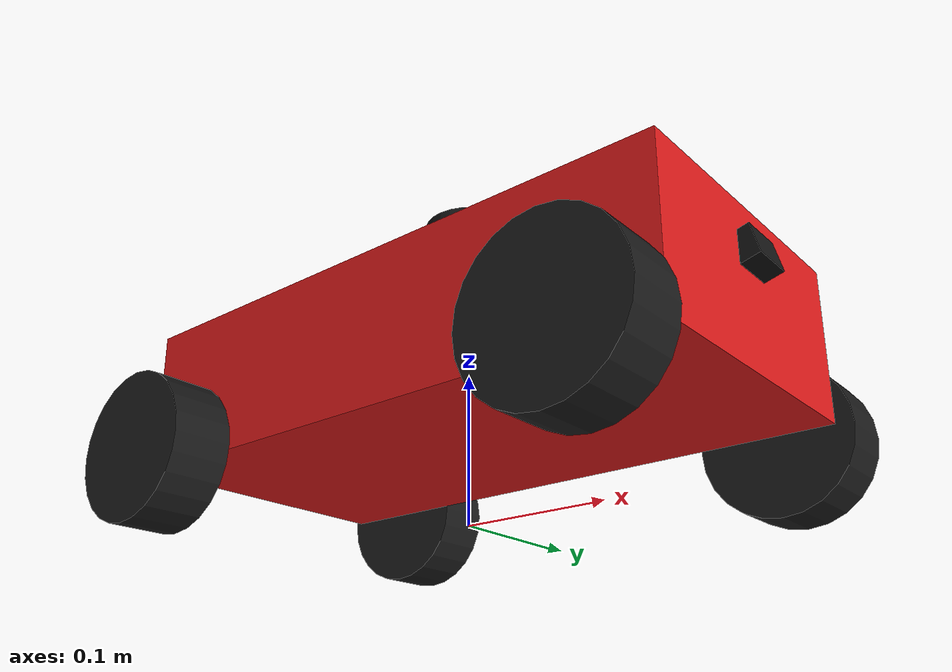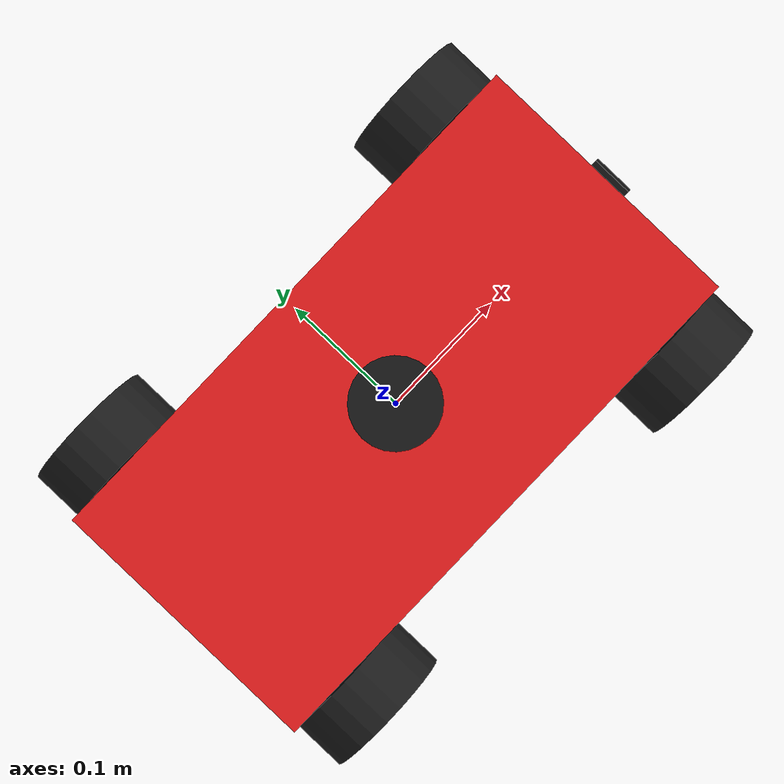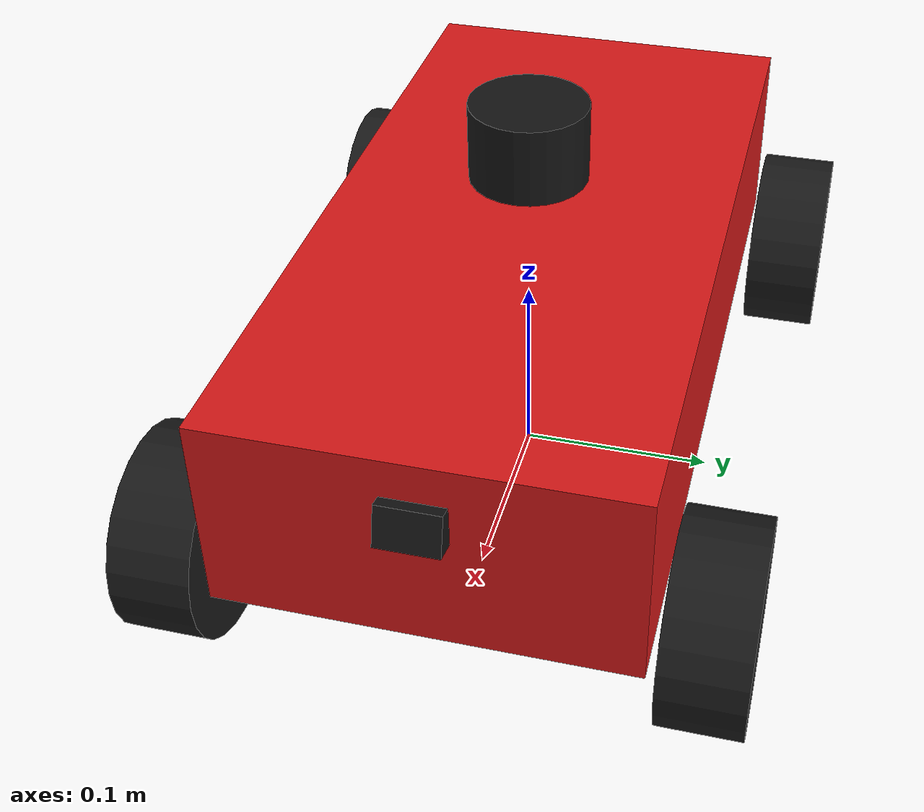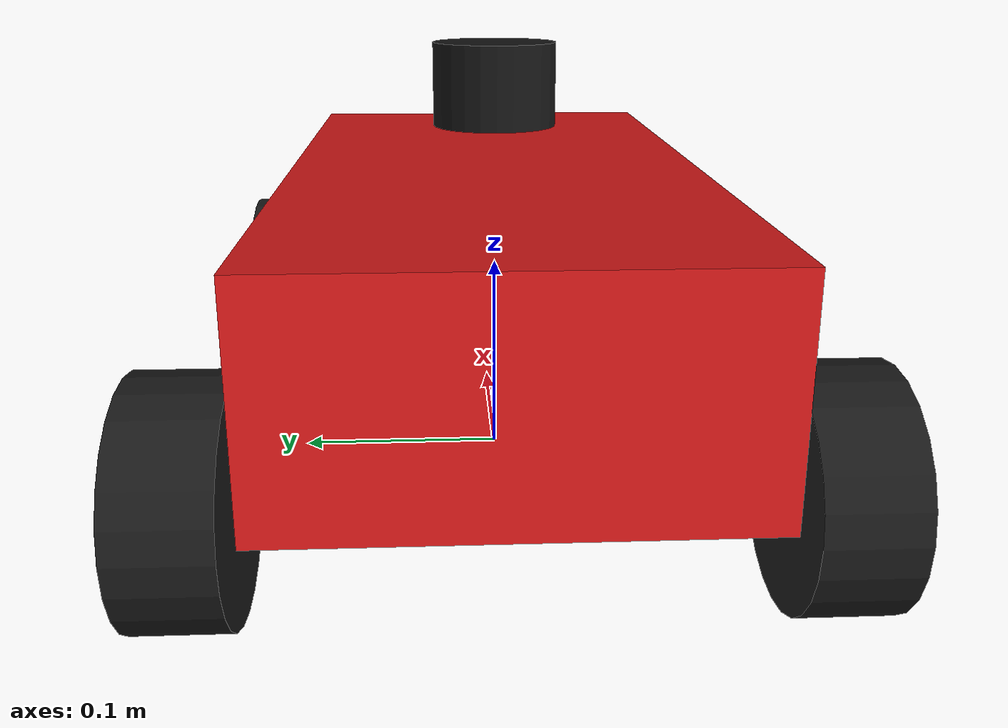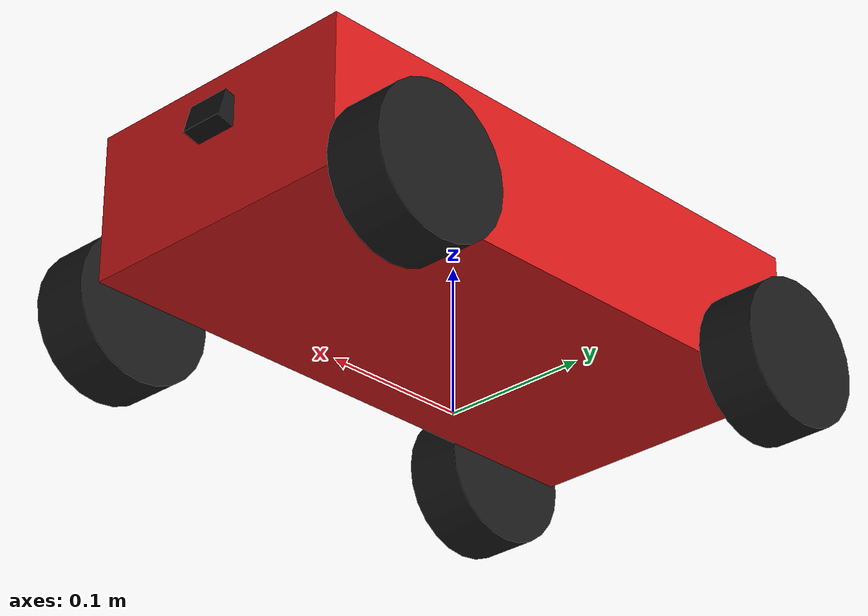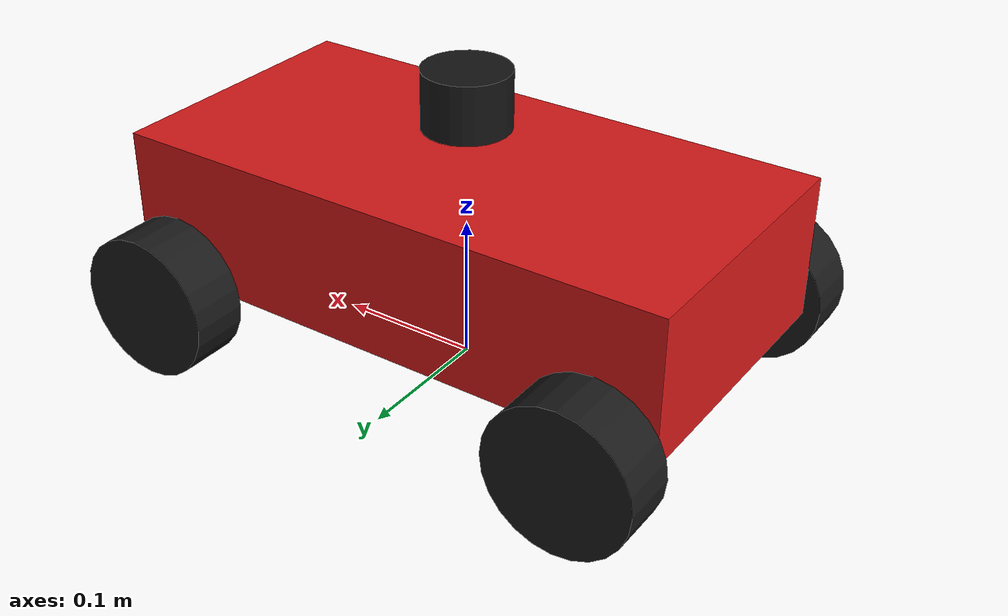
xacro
<?xml version="1.0"?>
<robot name="slam_car"
       xmlns:xacro="http://ros.org/wiki/xacro"
>

  <xacro:property name="wheelbase"        value="0.32"/>
  <xacro:property name="track_width"      value="0.25"/>
  <xacro:property name="wheel_radius"     value="0.05"/>
  <xacro:property name="wheel_width"      value="0.04"/>
  <xacro:property name="chassis_length"   value="0.40"/>
  <xacro:property name="chassis_width"    value="0.20"/>
  <xacro:property name="chassis_height"   value="0.10"/>
  <xacro:property name="chassis_mass"     value="1.5"/>
  <xacro:property name="wheel_mass"       value="0.05"/>
  <xacro:property name="steering_limit"   value="0.6"/>
  <xacro:property name="wheel_friction_mu" value="1.0"/>

  <!-- Govde (base_link): kutu eylemsizligi + yer seviyesinden origin
       yuksekligi. imu_joint de bu z-yuksekligini kullanacak (govdenin
       geometrik merkeziyle ayni nokta oldugu icin). -->
  <xacro:property name="chassis_ixx"      value="${chassis_mass*(chassis_width*chassis_width+chassis_height*chassis_height)/12}"/>
  <xacro:property name="chassis_iyy"      value="${chassis_mass*(chassis_length*chassis_length+chassis_height*chassis_height)/12}"/>
  <xacro:property name="chassis_izz"      value="${chassis_mass*(chassis_length*chassis_length+chassis_width*chassis_width)/12}"/>
  <xacro:property name="chassis_origin_z" value="${wheel_radius + chassis_height/2}"/>

  <!-- Tekerlekler: 4'u de ayni fiziksel boyutta, o yuzden eylemsizlik
       TEK formul (macro icinde kullaniliyor). Montaj konumlari ise
       4 farkli isaret kombinasyonu; her biri kendi ismiyle. -->
  <xacro:property name="wheel_ixx_izz"    value="${wheel_mass*(3*wheel_radius*wheel_radius+wheel_width*wheel_width)/12}"/>
  <xacro:property name="wheel_iyy_spin"   value="${wheel_mass*wheel_radius*wheel_radius/2}"/>
  <xacro:property name="front_wheel_x"    value="${wheelbase/2}"/>
  <xacro:property name="rear_wheel_x"     value="${-wheelbase/2}"/>
  <xacro:property name="left_wheel_y"     value="${track_width/2}"/>
  <xacro:property name="right_wheel_y"    value="${-track_width/2}"/>
  <xacro:property name="wheel_mount_z"    value="${wheel_radius}"/>

  <xacro:property name="lidar_radius"     value="0.03"/>
  <xacro:property name="lidar_height"     value="0.04"/>
  <xacro:property name="lidar_mass"       value="0.05"/>

  <!-- Tureyen degerler: eylemsizlik (dik silindir, eksen Z) +
       govdenin uzerine, cikinti olmadan oturacagi z-yuksekligi. -->
  <xacro:property name="lidar_ixx_iyy"    value="${lidar_mass*(3*lidar_radius*lidar_radius+lidar_height*lidar_height)/12}"/>
  <xacro:property name="lidar_izz"        value="${lidar_mass*lidar_radius*lidar_radius/2}"/>
  <xacro:property name="lidar_origin_z"   value="${wheel_radius + chassis_height + lidar_height}"/>

  <xacro:property name="lidar_fov"              value="6.28318530718"/> <!-- 2*pi, tam 360 derece -->
  <xacro:property name="lidar_samples"          value="360"/>
  <xacro:property name="lidar_min_range"        value="0.12"/>
  <xacro:property name="lidar_max_range"        value="3.5"/>
  <xacro:property name="lidar_range_resolution" value="0.015"/>
  <xacro:property name="lidar_rate"             value="10"/>
  <xacro:property name="lidar_noise_mean"       value="0.0"/>
  <xacro:property name="lidar_noise_stddev"     value="0.01"/>

  <!-- ============================================================
       IMU PARAMETRELERI
       ============================================================
       FIZIKSEL: -->
  <xacro:property name="imu_size_x"       value="0.02"/>
  <xacro:property name="imu_size_y"       value="0.02"/>
  <xacro:property name="imu_size_z"       value="0.01"/>
  <xacro:property name="imu_mass"         value="0.01"/>

  <xacro:property name="imu_ixx"          value="${imu_mass*(imu_size_y*imu_size_y+imu_size_z*imu_size_z)/12}"/>
  <xacro:property name="imu_iyy"          value="${imu_mass*(imu_size_x*imu_size_x+imu_size_z*imu_size_z)/12}"/>
  <xacro:property name="imu_izz"          value="${imu_mass*(imu_size_x*imu_size_x+imu_size_y*imu_size_y)/12}"/>

  <xacro:property name="imu_rate"                        value="100"/>
  <xacro:property name="imu_noise_mean"                  value="0.0"/>
  <xacro:property name="imu_angular_velocity_stddev"     value="0.0003"/>
  <xacro:property name="imu_linear_acceleration_stddev"  value="0.02"/>

  <!-- ============================================================
       KAMERA PARAMETRELERI
       ============================================================
       FIZIKSEL: -->
  <xacro:property name="camera_size_x"    value="0.02"/>
  <xacro:property name="camera_size_y"    value="0.03"/>
  <xacro:property name="camera_size_z"    value="0.02"/>
  <xacro:property name="camera_mass"      value="0.01"/>

  <!-- Tureyen degerler: eylemsizlik (kutu) + govdenin on yuzunde,
       ust govde hizasindaki montaj konumu. -->
  <xacro:property name="camera_ixx"       value="${camera_mass*(camera_size_y*camera_size_y+camera_size_z*camera_size_z)/12}"/>
  <xacro:property name="camera_iyy"       value="${camera_mass*(camera_size_x*camera_size_x+camera_size_z*camera_size_z)/12}"/>
  <xacro:property name="camera_izz"       value="${camera_mass*(camera_size_x*camera_size_x+camera_size_y*camera_size_y)/12}"/>
  <xacro:property name="camera_origin_x"  value="${chassis_length/2}"/>
  <xacro:property name="camera_origin_z"  value="${wheel_radius + chassis_height*0.7}"/>

  <xacro:property name="camera_pitch"     value="0.2618"/> <!-- 15 derece -->
  <xacro:property name="camera_joint_pitch" value="${-camera_pitch}"/>

  <xacro:property name="camera_horizontal_fov"  value="1.15"/>
  <xacro:property name="camera_image_width"     value="640"/>
  <xacro:property name="camera_image_height"    value="480"/>
  <xacro:property name="camera_clip_near"       value="0.05"/>
  <xacro:property name="camera_clip_far"        value="15.0"/>
  <xacro:property name="camera_rate"            value="30"/>
  <xacro:property name="camera_noise_mean"      value="0.0"/>
  <xacro:property name="camera_noise_stddev"    value="0.007"/>

  <material name="chassis_color"><color rgba="0.85 0.1 0.1 1"/></material>
  <material name="wheel_color"><color rgba="0.1 0.1 0.1 1"/></material>
  <material name="sensor_dark"><color rgba="0.08 0.08 0.08 1"/></material>
  <material name="sensor_blue"><color rgba="0.1 0.3 0.85 1"/></material>

  <link name="base_footprint"/>
  <joint name="base_footprint_joint" type="fixed">
    <parent link="base_footprint"/>
    <child link="base_link"/>
    <origin xyz="0 0 0" rpy="0 0 0"/>
  </joint>

  <link name="base_link">
    <visual>
      <origin xyz="0 0 ${chassis_origin_z}" rpy="0 0 0"/>
      <geometry><box size="${chassis_length} ${chassis_width} ${chassis_height}"/></geometry>
      <material name="chassis_color"/>
    </visual>
    <collision>
      <origin xyz="0 0 ${chassis_origin_z}" rpy="0 0 0"/>
      <geometry><box size="${chassis_length} ${chassis_width} ${chassis_height}"/></geometry>
    </collision>
    <inertial>
      <origin xyz="0 0 ${chassis_origin_z}" rpy="0 0 0"/>
      <mass value="${chassis_mass}"/>
      <inertia
        ixx="${chassis_ixx}" ixy="0" ixz="0"
        iyy="${chassis_iyy}" iyz="0"
        izz="${chassis_izz}"/>
    </inertial>
  </link>

  <xacro:macro name="wheel_link" params="name">
    <link name="${name}">
      <visual>
        <origin xyz="0 0 0" rpy="1.5708 0 0"/>
        <geometry><cylinder radius="${wheel_radius}" length="${wheel_width}"/></geometry>
        <material name="wheel_color"/>
      </visual>
      <collision>
        <origin xyz="0 0 0" rpy="1.5708 0 0"/>
        <geometry><cylinder radius="${wheel_radius}" length="${wheel_width}"/></geometry>
      </collision>
      <inertial>
        <mass value="${wheel_mass}"/>
        <inertia
          ixx="${wheel_ixx_izz}" ixy="0" ixz="0"
          iyy="${wheel_iyy_spin}" iyz="0"
          izz="${wheel_ixx_izz}"/>
      </inertial>
    </link>
  </xacro:macro>

  <link name="front_left_steer_link">
    <inertial><mass value="0.01"/><inertia ixx="1e-6" ixy="0" ixz="0" iyy="1e-6" iyz="0" izz="1e-6"/></inertial>
  </link>
  <joint name="front_left_wheel_steering_joint" type="revolute">
    <parent link="base_link"/>
    <child link="front_left_steer_link"/>
    <origin xyz="${front_wheel_x} ${left_wheel_y} ${wheel_mount_z}" rpy="0 0 0"/>
    <axis xyz="0 0 1"/>
    <limit lower="-${steering_limit}" upper="${steering_limit}" effort="10" velocity="5"/>
  </joint>
  <xacro:wheel_link name="front_left_wheel_link"/>
  <joint name="front_left_wheel_joint" type="continuous">
    <parent link="front_left_steer_link"/>
    <child link="front_left_wheel_link"/>
    <origin xyz="0 0 0" rpy="0 0 0"/>
    <axis xyz="0 1 0"/>
  </joint>

  <link name="front_right_steer_link">
    <inertial><mass value="0.01"/><inertia ixx="1e-6" ixy="0" ixz="0" iyy="1e-6" iyz="0" izz="1e-6"/></inertial>
  </link>
  <joint name="front_right_wheel_steering_joint" type="revolute">
    <parent link="base_link"/>
    <child link="front_right_steer_link"/>
    <origin xyz="${front_wheel_x} ${right_wheel_y} ${wheel_mount_z}" rpy="0 0 0"/>
    <axis xyz="0 0 1"/>
    <limit lower="-${steering_limit}" upper="${steering_limit}" effort="10" velocity="5"/>
  </joint>
  <xacro:wheel_link name="front_right_wheel_link"/>
  <joint name="front_right_wheel_joint" type="continuous">
    <parent link="front_right_steer_link"/>
    <child link="front_right_wheel_link"/>
    <origin xyz="0 0 0" rpy="0 0 0"/>
    <axis xyz="0 1 0"/>
  </joint>

  <xacro:wheel_link name="rear_left_wheel_link"/>
  <joint name="rear_left_wheel_joint" type="continuous">
    <parent link="base_link"/>
    <child link="rear_left_wheel_link"/>
    <origin xyz="${rear_wheel_x} ${left_wheel_y} ${wheel_mount_z}" rpy="0 0 0"/>
    <axis xyz="0 1 0"/>
  </joint>

  <xacro:wheel_link name="rear_right_wheel_link"/>
  <joint name="rear_right_wheel_joint" type="continuous">
    <parent link="base_link"/>
    <child link="rear_right_wheel_link"/>
    <origin xyz="${rear_wheel_x} ${right_wheel_y} ${wheel_mount_z}" rpy="0 0 0"/>
    <axis xyz="0 1 0"/>
  </joint>

  <gazebo reference="front_left_wheel_link">
    <mu1>${wheel_friction_mu}</mu1>
    <mu2>${wheel_friction_mu}</mu2>
  </gazebo>
  <gazebo reference="front_right_wheel_link">
    <mu1>${wheel_friction_mu}</mu1>
    <mu2>${wheel_friction_mu}</mu2>
  </gazebo>
  <gazebo reference="rear_left_wheel_link">
    <mu1>${wheel_friction_mu}</mu1>
    <mu2>${wheel_friction_mu}</mu2>
  </gazebo>
  <gazebo reference="rear_right_wheel_link">
    <mu1>${wheel_friction_mu}</mu1>
    <mu2>${wheel_friction_mu}</mu2>
  </gazebo>

  <gazebo>
    <plugin filename="ignition-gazebo-ackermann-steering-system"
            name="gz::sim::systems::AckermannSteering">
      <left_joint>front_left_wheel_joint</left_joint>
      <left_joint>rear_left_wheel_joint</left_joint>
      <right_joint>front_right_wheel_joint</right_joint>
      <right_joint>rear_right_wheel_joint</right_joint>
      <left_steering_joint>front_left_wheel_steering_joint</left_steering_joint>
      <right_steering_joint>front_right_wheel_steering_joint</right_steering_joint>
      <kingpin_width>${track_width - 0.02}</kingpin_width>
      <steering_limit>${steering_limit}</steering_limit>
      <wheel_base>${wheelbase}</wheel_base>
      <wheel_separation>${track_width}</wheel_separation>
      <wheel_radius>${wheel_radius}</wheel_radius>
      <min_velocity>-1.0</min_velocity>
      <max_velocity>2.0</max_velocity>
      <min_acceleration>-3.0</min_acceleration>
      <max_acceleration>3.0</max_acceleration>
      <topic>cmd_vel</topic>
      <odom_topic>odom</odom_topic>
      <tf_topic>tf</tf_topic>
      <frame_id>odom</frame_id>
      <child_frame_id>base_footprint</child_frame_id>
      <odom_publish_frequency>30</odom_publish_frequency>
    </plugin>

    <plugin filename="ignition-gazebo-joint-state-publisher-system"
            name="ignition::gazebo::systems::JointStatePublisher"/>
  </gazebo>

  <link name="lidar_link">
    <visual>
      <geometry><cylinder radius="${lidar_radius}" length="${lidar_height}"/></geometry>
      <material name="sensor_dark"/>
    </visual>
    <collision>
      <geometry><cylinder radius="${lidar_radius}" length="${lidar_height}"/></geometry>
    </collision>
    <inertial>
      <mass value="${lidar_mass}"/>
      <inertia
        ixx="${lidar_ixx_iyy}" ixy="0" ixz="0"
        iyy="${lidar_ixx_iyy}" iyz="0"
        izz="${lidar_izz}"/>
    </inertial>
  </link>
  <joint name="lidar_joint" type="fixed">
    <parent link="base_link"/>
    <child link="lidar_link"/>
    <origin xyz="0 0 ${lidar_origin_z}" rpy="0 0 0"/>
  </joint>

  <gazebo reference="lidar_link">
    <sensor name="lidar_sensor" type="gpu_lidar">
      <topic>scan</topic>
      <ignition_frame_id>lidar_link</ignition_frame_id>
      <update_rate>${lidar_rate}</update_rate>
      <always_on>1</always_on>
      <visualize>true</visualize>
      <lidar>
        <scan>
          <horizontal>
            <samples>${lidar_samples}</samples>
            <resolution>1</resolution>
            <min_angle>-${lidar_fov/2}</min_angle>
            <max_angle>${lidar_fov/2}</max_angle>
          </horizontal>
        </scan>
        <range>
          <min>${lidar_min_range}</min>
          <max>${lidar_max_range}</max>
          <resolution>${lidar_range_resolution}</resolution>
        </range>
        <noise>
          <type>gaussian</type>
          <mean>${lidar_noise_mean}</mean>
          <stddev>${lidar_noise_stddev}</stddev>
        </noise>
      </lidar>
    </sensor>
  </gazebo>

  <link name="imu_link">
    <visual>
      <geometry><box size="${imu_size_x} ${imu_size_y} ${imu_size_z}"/></geometry>
      <material name="sensor_blue"/>
    </visual>
    <collision>
      <geometry><box size="${imu_size_x} ${imu_size_y} ${imu_size_z}"/></geometry>
    </collision>
    <inertial>
      <mass value="${imu_mass}"/>
      <inertia
        ixx="${imu_ixx}" ixy="0" ixz="0"
        iyy="${imu_iyy}" iyz="0"
        izz="${imu_izz}"/>
    </inertial>
  </link>
  <joint name="imu_joint" type="fixed">
    <parent link="base_link"/>
    <child link="imu_link"/>
    <origin xyz="0 0 ${chassis_origin_z}" rpy="0 0 0"/>
  </joint>

  <gazebo reference="imu_link">
    <sensor name="imu_sensor" type="imu">
      <topic>imu</topic>
      <ignition_frame_id>imu_link</ignition_frame_id>
      <update_rate>${imu_rate}</update_rate>
      <always_on>1</always_on>
      <imu>
        <angular_velocity>
          <x><noise type="gaussian"><mean>${imu_noise_mean}</mean><stddev>${imu_angular_velocity_stddev}</stddev></noise></x>
          <y><noise type="gaussian"><mean>${imu_noise_mean}</mean><stddev>${imu_angular_velocity_stddev}</stddev></noise></y>
          <z><noise type="gaussian"><mean>${imu_noise_mean}</mean><stddev>${imu_angular_velocity_stddev}</stddev></noise></z>
        </angular_velocity>
        <linear_acceleration>
          <x><noise type="gaussian"><mean>${imu_noise_mean}</mean><stddev>${imu_linear_acceleration_stddev}</stddev></noise></x>
          <y><noise type="gaussian"><mean>${imu_noise_mean}</mean><stddev>${imu_linear_acceleration_stddev}</stddev></noise></y>
          <z><noise type="gaussian"><mean>${imu_noise_mean}</mean><stddev>${imu_linear_acceleration_stddev}</stddev></noise></z>
        </linear_acceleration>
      </imu>
    </sensor>
  </gazebo>

  <link name="camera_link">
    <visual>
      <geometry><box size="${camera_size_x} ${camera_size_y} ${camera_size_z}"/></geometry>
      <material name="sensor_dark"/>
    </visual>
    <collision>
      <geometry><box size="${camera_size_x} ${camera_size_y} ${camera_size_z}"/></geometry>
    </collision>
    <inertial>
      <mass value="${camera_mass}"/>
      <inertia
        ixx="${camera_ixx}" ixy="0" ixz="0"
        iyy="${camera_iyy}" iyz="0"
        izz="${camera_izz}"/>
    </inertial>
  </link>
  <joint name="camera_joint" type="fixed">
    <parent link="base_link"/>
    <child link="camera_link"/>
    <origin xyz="${camera_origin_x} 0 ${camera_origin_z}" rpy="0 ${camera_joint_pitch} 0"/>
  </joint>

  <link name="camera_link_optical"/>
  <joint name="camera_optical_joint" type="fixed">
    <parent link="camera_link"/>
    <child link="camera_link_optical"/>
    <origin xyz="0 0 0" rpy="-1.5708 0 -1.5708"/>
  </joint>

  <gazebo reference="camera_link">
    <sensor name="camera_sensor" type="camera">
      <topic>camera/image</topic>
      <ignition_frame_id>camera_link_optical</ignition_frame_id>
      <update_rate>${camera_rate}</update_rate>
      <always_on>1</always_on>
      <visualize>true</visualize>
      <camera>
        <horizontal_fov>${camera_horizontal_fov}</horizontal_fov>
        <camera_info_topic>camera/camera_info</camera_info_topic>
        <image>
          <width>${camera_image_width}</width>
          <height>${camera_image_height}</height>
          <format>R8G8B8</format>
        </image>
        <clip>
          <near>${camera_clip_near}</near>
          <far>${camera_clip_far}</far>
        </clip>
        <noise>
          <type>gaussian</type>
          <mean>${camera_noise_mean}</mean>
          <stddev>${camera_noise_stddev}</stddev>
        </noise>
      </camera>
    </sensor>
  </gazebo>

</robot>
